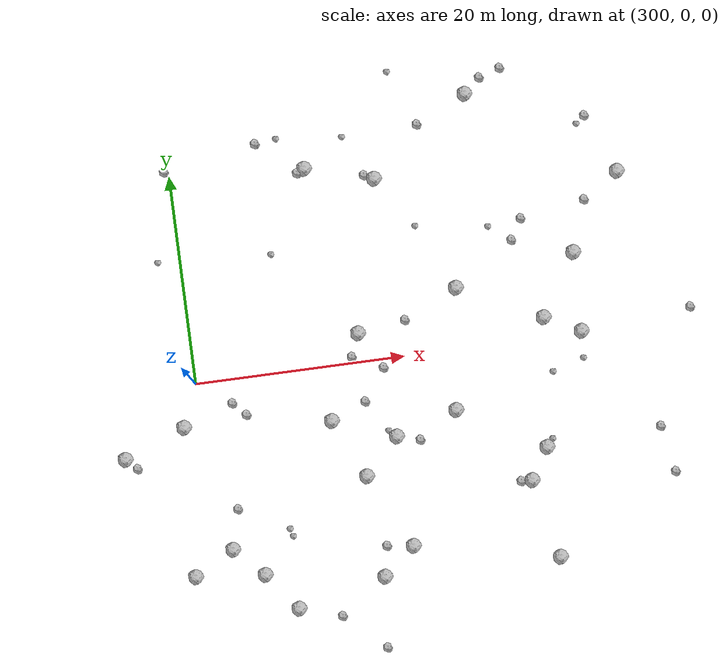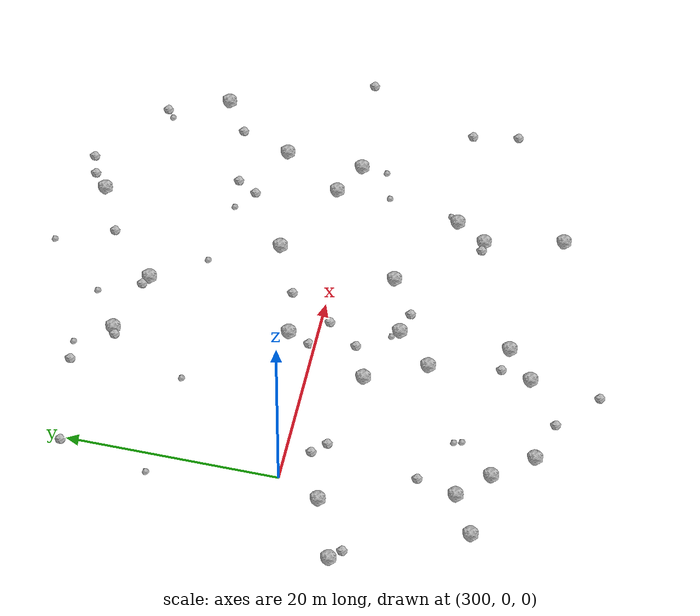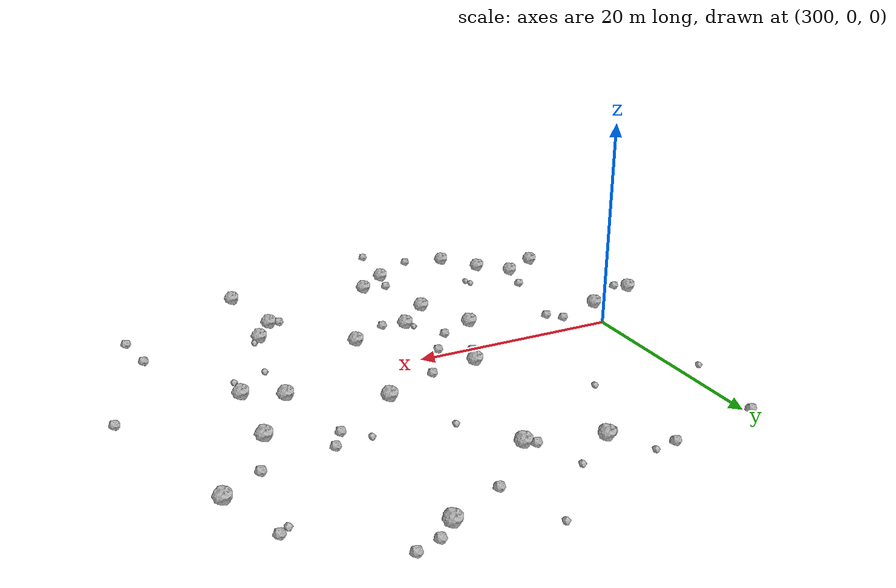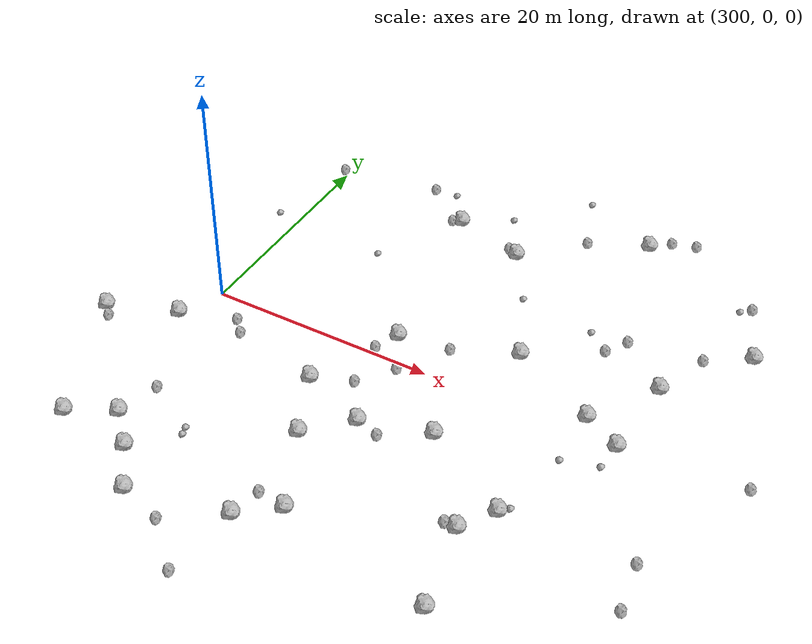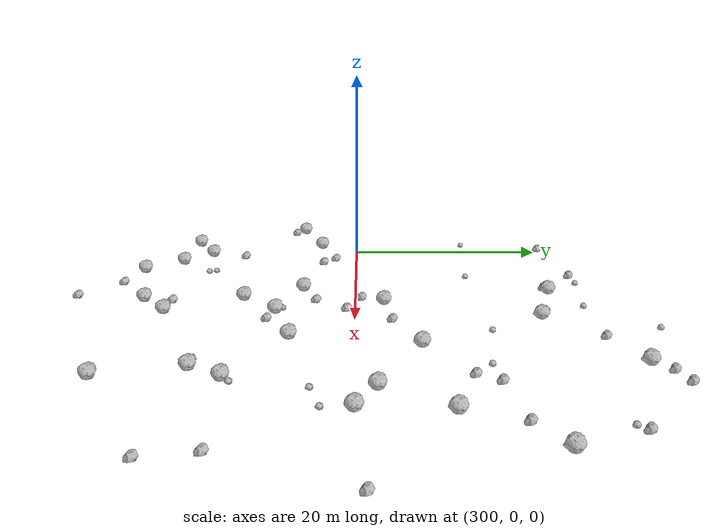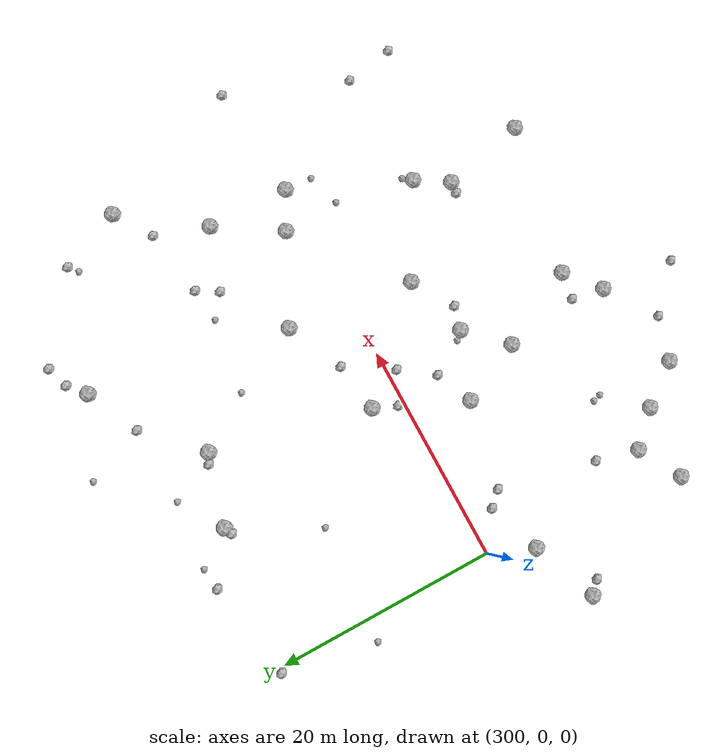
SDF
<sdf version="1.6">
 <world name="default">
  <include><uri>model://sun</uri></include>
  <model name="rock1_8_3">
   <include><uri>model://rock1</uri><pose>324.16263596418617 -5.755421498926236 0.5 0 0 0</pose></include>
  </model>
  <model name="rock1_8_4">
   <include><uri>model://rock1</uri><pose>318.2609165748545 -7.482752415171262 0.5 0 0 0</pose></include>
  </model>
  <model name="rock1_8_5">
   <include><uri>model://rock1</uri><pose>315.408701973036 -20.46107476593751 0.5 0 0 0</pose></include>
  </model>
  <model name="rock1_8_6">
   <include><uri>model://rock1</uri><pose>319.38790958289763 17.159504375727487 0.5 0 0 0</pose></include>
  </model>
  <model name="rock1_8_7">
   <include><uri>model://rock1</uri><pose>325.7029588082616 5.776676434443843 0.5 0 0 0</pose></include>
  </model>
  <model name="rock1_8_8">
   <include><uri>model://rock1</uri><pose>306.98592913644455 -22.35839859624045 0.5 0 0 0</pose></include>
  </model>
  <model name="rock1_8_9">
   <include><uri>model://rock1</uri><pose>315.91746300209974 2.7169268665077766 0.5 0 0 0</pose></include>
  </model>
  <model name="rock1_8_10">
   <include><uri>model://rock1</uri><pose>312.9124825277134 19.00085851618092 0.5 0 0 0</pose></include>
  </model>
  <model name="rock1_8_11">
   <include><uri>model://rock1</uri><pose>332.0631622165641 -20.82513311182428 0.5 0 0 0</pose></include>
  </model>
  <model name="rock1_8_12">
   <include><uri>model://rock1</uri><pose>298.40766659695055 -3.978379278470939 0.5 0 0 0</pose></include>
  </model>
  <model name="rock1_8_13">
   <include><uri>model://rock1</uri><pose>318.44412994425994 -17.95188273567946 0.5 0 0 0</pose></include>
  </model>
  <model name="rock1_8_14">
   <include><uri>model://rock1</uri><pose>332.2247894324901 -10.380397122794513 0.5 0 0 0</pose></include>
  </model>
  <model name="rock1_8_15">
   <include><uri>model://rock1</uri><pose>336.96617144973936 0.10807472657979389 0.5 0 0 0</pose></include>
  </model>
  <model name="rock1_8_16">
   <include><uri>model://rock1</uri><pose>330.4017745505367 -13.305210191748792 0.5 0 0 0</pose></include>
  </model>
  <model name="rock1_8_17">
   <include><uri>model://rock1</uri><pose>304.2348308592254 -18.782575064444693 0.5 0 0 0</pose></include>
  </model>
  <model name="rock1_8_18">
   <include><uri>model://rock1</uri><pose>329.0266703994303 24.103706429518233 0.5 0 0 0</pose></include>
  </model>
  <model name="rock1_8_19">
   <include><uri>model://rock1</uri><pose>312.3574799308565 -5.212708604003307 0.5 0 0 0</pose></include>
  </model>
  <model name="rock1_8_20">
   <include><uri>model://rock1</uri><pose>301.5205772672519 -16.029105234360685 0.5 0 0 0</pose></include>
  </model>
  <model name="rock1_8_21">
   <include><uri>model://rock1</uri><pose>337.22176500458386 7.658528571356783 0.5 0 0 0</pose></include>
  </model>
  <model name="rock1_8_22">
   <include><uri>model://rock1</uri><pose>292.53524541638154 -6.248647385861389 0.5 0 0 0</pose></include>
  </model>
  <model name="rock1_8_23">
   <include><uri>model://rock1</uri><pose>314.9547609268542 -10.847458720381656 0.5 0 0 0</pose></include>
  </model>
  <model name="rock1_8_24">
   <include><uri>model://rock1</uri><pose>342.4044773455796 14.815903500502031 0.5 0 0 0</pose></include>
  </model>
  <model name="rock1_8_25">
   <include><uri>model://rock1</uri><pose>297.71339923636333 -18.112915198290768 0.5 0 0 0</pose></include>
  </model>
  <model name="rock1_8_26">
   <include><uri>model://rock1</uri><pose>333.57916789023227 1.8757163443829654 0.5 0 0 0</pose></include>
  </model>
  <model name="rock2_8_0">
   <include><uri>model://rock2</uri><pose>320.41826919849046 -8.08620892107507 0.3 0 0 0</pose></include>
  </model>
  <model name="rock2_8_1">
   <include><uri>model://rock2</uri><pose>324.09393915827116 21.826882418187324 0.3 0 0 0</pose></include>
  </model>
  <model name="rock2_8_2">
   <include><uri>model://rock2</uri><pose>293.53197161786863 -7.257562777479798 0.3 0 0 0</pose></include>
  </model>
  <model name="rock2_8_3">
   <include><uri>model://rock2</uri><pose>343.96068339654755 -14.265772831271379 0.3 0 0 0</pose></include>
  </model>
  <model name="rock2_8_4">
   <include><uri>model://rock2</uri><pose>299.6016020650423 20.482820602761763 0.3 0 0 0</pose></include>
  </model>
  <model name="rock2_8_5">
   <include><uri>model://rock2</uri><pose>304.40221840993104 -3.52933328859255 0.3 0 0 0</pose></include>
  </model>
  <model name="rock2_8_6">
   <include><uri>model://rock2</uri><pose>317.87055022971776 -0.8189238013327191 0.3 0 0 0</pose></include>
  </model>
  <model name="rock2_8_7">
   <include><uri>model://rock2</uri><pose>312.14863584321154 18.697489154518998 0.3 0 0 0</pose></include>
  </model>
  <model name="rock2_8_8">
   <include><uri>model://rock2</uri><pose>330.6018563724693 25.509762900353273 0.3 0 0 0</pose></include>
  </model>
  <model name="rock2_8_9">
   <include><uri>model://rock2</uri><pose>340.04835144139884 20.55677537905752 0.3 0 0 0</pose></include>
  </model>
  <model name="rock2_8_10">
   <include><uri>model://rock2</uri><pose>329.3408411741633 -13.252596070821347 0.3 0 0 0</pose></include>
  </model>
  <model name="rock2_8_11">
   <include><uri>model://rock2</uri><pose>318.4486087105033 17.658899570595693 0.3 0 0 0</pose></include>
  </model>
  <model name="rock2_8_12">
   <include><uri>model://rock2</uri><pose>343.1620096846197 -9.833845272762627 0.3 0 0 0</pose></include>
  </model>
  <model name="rock2_8_13">
   <include><uri>model://rock2</uri><pose>347.51135853734013 1.0401612276801977 0.3 0 0 0</pose></include>
  </model>
  <model name="rock2_8_14">
   <include><uri>model://rock2</uri><pose>320.4746341299744 3.3964888435886422 0.3 0 0 0</pose></include>
  </model>
  <model name="rock2_8_15">
   <include><uri>model://rock2</uri><pose>315.9465668618161 -17.609484734813535 0.3 0 0 0</pose></include>
  </model>
  <model name="rock2_8_16">
   <include><uri>model://rock2</uri><pose>308.53787924248485 22.017309368331894 0.3 0 0 0</pose></include>
  </model>
  <model name="rock2_8_17">
   <include><uri>model://rock2</uri><pose>303.2106380636073 -2.27277949644386 0.3 0 0 0</pose></include>
  </model>
  <model name="rock2_8_18">
   <include><uri>model://rock2</uri><pose>315.71368167252206 -3.7867459158740786 0.3 0 0 0</pose></include>
  </model>
  <model name="rock2_8_19">
   <include><uri>model://rock2</uri><pose>315.01237692910854 0.5853926166927934 0.3 0 0 0</pose></include>
  </model>
  <model name="rock2_8_20">
   <include><uri>model://rock2</uri><pose>314.7420759795755 -27.088910084600787 0.3 0 0 0</pose></include>
  </model>
  <model name="rock2_8_21">
   <include><uri>model://rock2</uri><pose>302.4503566791535 -12.291233682255239 0.3 0 0 0</pose></include>
  </model>
  <model name="rock2_8_22">
   <include><uri>model://rock2</uri><pose>338.9259106279597 12.547111978814051 0.3 0 0 0</pose></include>
  </model>
  <model name="rock2_8_23">
   <include><uri>model://rock2</uri><pose>332.6884553393891 11.56164552801011 0.3 0 0 0</pose></include>
  </model>
  <model name="rock2_8_24">
   <include><uri>model://rock2</uri><pose>331.54500879169916 9.627019478834754 0.3 0 0 0</pose></include>
  </model>
  <model name="rock2_8_25">
   <include><uri>model://rock2</uri><pose>310.9335493414799 -23.58826681654999 0.3 0 0 0</pose></include>
  </model>
  <model name="rock2_8_26">
   <include><uri>model://rock2</uri><pose>332.659994621997 26.173526855666047 0.3 0 0 0</pose></include>
  </model>
  <model name="rock3_8_0">
   <include><uri>model://rock3</uri><pose>307.28286559392 -15.532072956847925 0.2 0 0 0</pose></include>
  </model>
  <model name="rock3_8_1">
   <include><uri>model://rock3</uri><pose>322.6153447854979 12.173977372036347 0.2 0 0 0</pose></include>
  </model>
  <model name="rock3_8_2">
   <include><uri>model://rock3</uri><pose>317.5489151132785 -6.84015214243529 0.2 0 0 0</pose></include>
  </model>
  <model name="rock3_8_3">
   <include><uri>model://rock3</uri><pose>333.74792759425804 -3.3604032271524034 0.2 0 0 0</pose></include>
  </model>
  <model name="rock3_8_4">
   <include><uri>model://rock3</uri><pose>329.4858431166337 11.19719055563062 0.2 0 0 0</pose></include>
  </model>
  <model name="rock3_8_5">
   <include><uri>model://rock3</uri><pose>321.92040555238805 27.231983088458655 0.2 0 0 0</pose></include>
  </model>
  <model name="rock3_8_6">
   <include><uri>model://rock3</uri><pose>332.84451472741455 -9.646542688001041 0.2 0 0 0</pose></include>
  </model>
  <model name="rock3_8_7">
   <include><uri>model://rock3</uri><pose>308.66561174465176 11.29035812653391 0.2 0 0 0</pose></include>
  </model>
  <model name="rock3_8_8">
   <include><uri>model://rock3</uri><pose>297.90796491874363 11.94133674931993 0.2 0 0 0</pose></include>
  </model>
  <model name="rock3_8_9">
   <include><uri>model://rock3</uri><pose>310.55848555329214 22.22937855016805 0.2 0 0 0</pose></include>
  </model>
  <model name="rock3_8_10">
   <include><uri>model://rock3</uri><pose>316.8260911958187 21.57711210784315 0.2 0 0 0</pose></include>
  </model>
  <model name="rock3_8_11">
   <include><uri>model://rock3</uri><pose>336.7910195086233 -2.4333319051231044 0.2 0 0 0</pose></include>
  </model>
  <model name="rock3_8_12">
   <include><uri>model://rock3</uri><pose>339.1941343424531 19.852707718745116 0.2 0 0 0</pose></include>
  </model>
  <model name="rock3_8_13">
   <include><uri>model://rock3</uri><pose>307.0623007385607 -14.808747011695182 0.2 0 0 0</pose></include>
  </model>
 </world>
</sdf>
